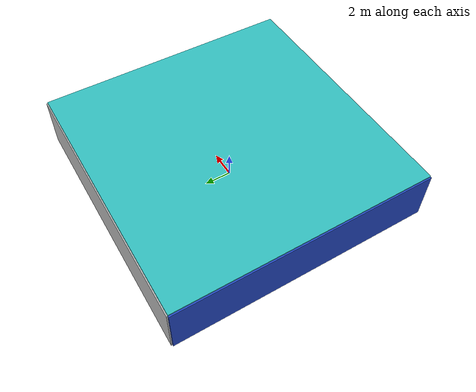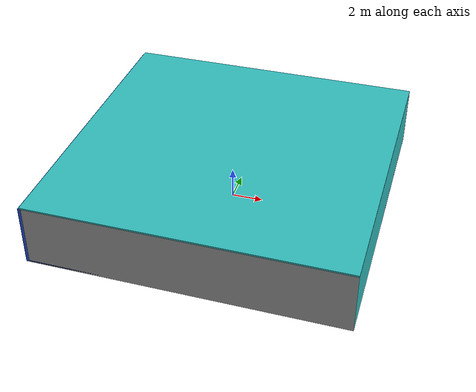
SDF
<sdf version="1.4">
 <world name="default">
  <physics type="ode">
   <max_step_size>0.001</max_step_size>
   <real_time_factor>1</real_time_factor>
   <real_time_update_rate>1000</real_time_update_rate>
   <gravity>0 0 -9.8</gravity>
  </physics>
  <scene><ambient>0.4 0.4 0.4 1</ambient><background>0.7 0.7 0.7 1</background><shadows>1</shadows></scene>
  <model name="Surrounding">
   <static>1</static>
   <link name="Ceiling">
    <collision name="Ceiling_Collision"><geometry><box><size>20 20 0.1</size></box></geometry></collision>
    <visual name="Ceiling_Visual">
     <geometry><box><size>20 20 0.1</size></box></geometry>
     <material>
      <script>
       <uri>file://media/materials/scripts/gazebo.material</uri>
       <name>Gazebo/TurquoiseGlowOutline</name>
      </script>
     </material>
    </visual>
    <pose>0 0 4.05 0 0 0</pose>
   </link>
   <link name="Wall_South">
    <collision name="Wall_South_Collision">
     <geometry><box><size>20 0 4</size></box></geometry>
     <pose>0 0 2 0 -0 0</pose>
    </collision>
    <visual name="Wall_South_Visual">
     <pose>0 0 2 0 -0 0</pose>
     <geometry><box><size>20 0 4</size></box></geometry>
     <material>
      <script><uri>file://media/materials/scripts/gazebo.material</uri><name>Gazebo/GreyGradientSky</name></script>
     </material>
    </visual>
    <velocity_decay><linear>0</linear><angular>0</angular></velocity_decay>
    <pose>0 -10 0 0 -0 0</pose>
   </link>
   <link name="Wall_East">
    <collision name="Wall_21_Collision">
     <geometry><box><size>20 0 4</size></box></geometry>
     <pose>0 0 2 0 -0 0</pose>
    </collision>
    <visual name="Wall_21_Visual">
     <pose>0 0 2 0 -0 0</pose>
     <geometry><box><size>20 0 4</size></box></geometry>
     <material>
      <script>
       <uri>file://media/materials/scripts/gazebo.material</uri>
       <name>Gazebo/TurquoiseGlowOutline</name>
      </script>
     </material>
    </visual>
    <velocity_decay><linear>0</linear><angular>0</angular></velocity_decay>
    <pose>10 0 0 0 -0 1.5708</pose>
   </link>
   <link name="Wall_North">
    <collision name="Wall_22_Collision">
     <geometry><box><size>20 0.2 4</size></box></geometry>
     <pose>0 0 2 0 -0 0</pose>
    </collision>
    <visual name="Wall_22_Visual">
     <pose>0 0 2 0 -0 0</pose>
     <geometry><box><size>20 0.2 4</size></box></geometry>
     <material>
      <script><uri>file://media/materials/scripts/gazebo.material</uri><name>Gazebo/JointAnchor</name></script>
     </material>
    </visual>
    <velocity_decay><linear>0</linear><angular>0</angular></velocity_decay>
    <pose>0 10 0 0 -0 0</pose>
   </link>
   <link name="Wall_West">
    <collision name="Wall_23_Collision">
     <geometry><box><size>20 0.2 4</size></box></geometry>
     <pose>0 0 2 0 -0 0</pose>
    </collision>
    <visual name="Wall_23_Visual">
     <pose>0 0 2 0 -0 0</pose>
     <geometry><box><size>20 0.2 4</size></box></geometry>
     <material>
      <script><uri>file://media/materials/scripts/gazebo.material</uri><name>Gazebo/Blue</name></script>
     </material>
    </visual>
    <velocity_decay><linear>0</linear><angular>0</angular></velocity_decay>
    <pose>-10 0 0 0 0 -1.5708</pose>
   </link>
   <link name="Ground_link">
    <collision name="collision">
     <pose>0 0 .05 0 -0 0</pose>
     <geometry><box><size>20 20 0.1</size></box></geometry>
    </collision>
    <visual name="visual">
     <pose>0 0 .05 0 -0 0</pose>
     <geometry><box><size>20 20 0.1</size></box></geometry>
     <material>
      <script><uri>file://media/materials/scripts/gazebo.material</uri><name>Gazebo/Blue</name></script>
     </material>
    </visual>
   </link>
   <static>1</static>
  </model>
  <spherical_coordinates>
   <surface_model>EARTH_WGS84</surface_model>
   <latitude_deg>0</latitude_deg>
   <longitude_deg>0</longitude_deg>
   <elevation>0</elevation>
   <heading_deg>0</heading_deg>
  </spherical_coordinates>
  <light name="lightball_0" type="diffuse">
   <diffuse>0.8 0.8 0.8 1</diffuse>
   <specular>0.2 0.2 0.2 1</specular>
   <attenuation>
    <range>100</range>
    <constant>0.7</constant>
    <linear>0.01</linear>
    <quadratic>0.001</quadratic>
   </attenuation>
   <direction>-0.5 0.1 -0.9</direction>
   <pose>-3.86227762536 -2.41019246587 3.71555062439 0 0 0</pose>
  </light>
  <light name="lightball_1" type="diffuse">
   <diffuse>0.8 0.8 0.8 1</diffuse>
   <specular>0.2 0.2 0.2 1</specular>
   <attenuation>
    <range>100</range>
    <constant>0.7</constant>
    <linear>0.01</linear>
    <quadratic>0.001</quadratic>
   </attenuation>
   <direction>-0.5 0.1 -0.9</direction>
   <pose>5.61935691695 -5.64362054377 1.68235835918 0 0 0</pose>
  </light>
  <light name="lightball_2" type="diffuse">
   <diffuse>0.8 0.8 0.8 1</diffuse>
   <specular>0.2 0.2 0.2 1</specular>
   <attenuation>
    <range>100</range>
    <constant>0.7</constant>
    <linear>0.01</linear>
    <quadratic>0.001</quadratic>
   </attenuation>
   <direction>-0.5 0.1 -0.9</direction>
   <pose>0.375384930974 -2.25901895546 1.63686047577 0 0 0</pose>
  </light>
  <light name="lightball_3" type="diffuse">
   <diffuse>0.8 0.8 0.8 1</diffuse>
   <specular>0.2 0.2 0.2 1</specular>
   <attenuation>
    <range>100</range>
    <constant>0.7</constant>
    <linear>0.01</linear>
    <quadratic>0.001</quadratic>
   </attenuation>
   <direction>-0.5 0.1 -0.9</direction>
   <pose>7.59535509343 9.12177182558 3.85417673149 0 0 0</pose>
  </light>
  <light name="lightball_4" type="diffuse">
   <diffuse>0.8 0.8 0.8 1</diffuse>
   <specular>0.2 0.2 0.2 1</specular>
   <attenuation>
    <range>100</range>
    <constant>0.7</constant>
    <linear>0.01</linear>
    <quadratic>0.001</quadratic>
   </attenuation>
   <direction>-0.5 0.1 -0.9</direction>
   <pose>-6.75650341755 1.10960803492 0.867866606159 0 0 0</pose>
  </light>
  <light name="lightball_5" type="diffuse">
   <diffuse>0.8 0.8 0.8 1</diffuse>
   <specular>0.2 0.2 0.2 1</specular>
   <attenuation>
    <range>100</range>
    <constant>0.7</constant>
    <linear>0.01</linear>
    <quadratic>0.001</quadratic>
   </attenuation>
   <direction>-0.5 0.1 -0.9</direction>
   <pose>-7.4995131681 -5.21967765663 1.01654193526 0 0 0</pose>
  </light>
  <light name="lightball_6" type="diffuse">
   <diffuse>0.8 0.8 0.8 1</diffuse>
   <specular>0.2 0.2 0.2 1</specular>
   <attenuation>
    <range>100</range>
    <constant>0.7</constant>
    <linear>0.01</linear>
    <quadratic>0.001</quadratic>
   </attenuation>
   <direction>-0.5 0.1 -0.9</direction>
   <pose>5.81967594573 -0.0641894491867 1.24571673397 0 0 0</pose>
  </light>
  <light name="lightball_7" type="diffuse">
   <diffuse>0.8 0.8 0.8 1</diffuse>
   <specular>0.2 0.2 0.2 1</specular>
   <attenuation>
    <range>100</range>
    <constant>0.7</constant>
    <linear>0.01</linear>
    <quadratic>0.001</quadratic>
   </attenuation>
   <direction>-0.5 0.1 -0.9</direction>
   <pose>-4.25423305065 0.562775720762 2.433494789 0 0 0</pose>
  </light>
  <light name="lightball_8" type="diffuse">
   <diffuse>0.8 0.8 0.8 1</diffuse>
   <specular>0.2 0.2 0.2 1</specular>
   <attenuation>
    <range>100</range>
    <constant>0.7</constant>
    <linear>0.01</linear>
    <quadratic>0.001</quadratic>
   </attenuation>
   <direction>-0.5 0.1 -0.9</direction>
   <pose>5.47277446777 6.08490988344 0.913874295808 0 0 0</pose>
  </light>
  <light name="lightball_9" type="diffuse">
   <diffuse>0.8 0.8 0.8 1</diffuse>
   <specular>0.2 0.2 0.2 1</specular>
   <attenuation>
    <range>100</range>
    <constant>0.7</constant>
    <linear>0.01</linear>
    <quadratic>0.001</quadratic>
   </attenuation>
   <direction>-0.5 0.1 -0.9</direction>
   <pose>-8.42083114305 4.22484928313 2.84362580633 0 0 0</pose>
  </light>
  <light name="lightball_10" type="diffuse">
   <diffuse>0.8 0.8 0.8 1</diffuse>
   <specular>0.2 0.2 0.2 1</specular>
   <attenuation>
    <range>100</range>
    <constant>0.7</constant>
    <linear>0.01</linear>
    <quadratic>0.001</quadratic>
   </attenuation>
   <direction>-0.5 0.1 -0.9</direction>
   <pose>0.682997296228 -3.26331253795 3.02733442901 0 0 0</pose>
  </light>
  <light name="lightball_11" type="diffuse">
   <diffuse>0.8 0.8 0.8 1</diffuse>
   <specular>0.2 0.2 0.2 1</specular>
   <attenuation>
    <range>100</range>
    <constant>0.7</constant>
    <linear>0.01</linear>
    <quadratic>0.001</quadratic>
   </attenuation>
   <direction>-0.5 0.1 -0.9</direction>
   <pose>-0.414385901895 9.46073497607 1.66823705384 0 0 0</pose>
  </light>
  <light name="lightball_12" type="diffuse">
   <diffuse>0.8 0.8 0.8 1</diffuse>
   <specular>0.2 0.2 0.2 1</specular>
   <attenuation>
    <range>100</range>
    <constant>0.7</constant>
    <linear>0.01</linear>
    <quadratic>0.001</quadratic>
   </attenuation>
   <direction>-0.5 0.1 -0.9</direction>
   <pose>-0.778881620349 5.59199572076 2.75350718564 0 0 0</pose>
  </light>
  <include>
   <uri>model://robocup_3Dsim_goal</uri>
   <pose>-4.29075227672 -0.674691783336 0 0 0 2.13484099572</pose>
  </include>
  <include>
   <uri>model://textured_shapes</uri>
   <pose>-3.955982781 1.71145998938 0 0 0 2.8359937576</pose>
  </include>
  <include><uri>model://cabinet</uri><pose>0.571395238782 4.96829986318 0 0 0 1.62418342955</pose></include>
  <include><uri>model://cabinet</uri><pose>4.35926071712 -7.2457801438 0 0 0 0.155115256434</pose></include>
 </world>
</sdf>

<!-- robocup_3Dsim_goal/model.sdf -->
<sdf version="1.5">
  <model name="robocup_3d_goal">
    <static>true</static>
    <link name="left_post">
      <pose>0 1.05 0.45 0 0 0</pose>
      <collision name="collision">
        <geometry>
          <cylinder>
            <radius>0.05</radius>
            <length>0.9</length>
          </cylinder>
        </geometry>
      </collision>
      <visual name="visual">
        <geometry>
          <cylinder>
            <radius>0.05</radius>
            <length>0.9</length>
          </cylinder>
        </geometry>
        <material>
          <script>
            <uri>file://media/materials/scripts/gazebo.material</uri>
            <name>Gazebo/ZincYellow</name>
          </script>
        </material>
      </visual>
    </link>
    <link name="left_support_horiz_lower">
      <pose>0.30 1.05 0.01 0 0 0</pose>
      <collision name="collision">
        <geometry>
          <box>
            <size>0.50 0.02 0.02</size>
          </box>
        </geometry>
      </collision>
      <visual name="visual">
        <geometry>
          <box>
            <size>0.50 0.02 0.02</size>
          </box>
        </geometry>
        <material>
          <script>
            <uri>file://media/materials/scripts/gazebo.material</uri>
            <name>Gazebo/White</name>
          </script>
        </material>
      </visual>
    </link>
    <link name="left_support_horiz_upper">
      <pose>0.30 1.05 0.79 0 0 0</pose>
      <collision name="collision">
        <geometry>
          <box>
            <size>0.50 0.02 0.02</size>
          </box>
        </geometry>
      </collision>
      <visual name="visual">
        <geometry>
          <box>
            <size>0.50 0.02 0.02</size>
          </box>
        </geometry>
        <material>
          <script>
            <uri>file://media/materials/scripts/gazebo.material</uri>
            <name>Gazebo/White</name>
          </script>
        </material>
      </visual>
    </link>
    <link name="left_support_vertical">
      <pose>0.56 1.05 0.4 0 1.5708 0</pose>
      <collision name="collision">
        <geometry>
          <box>
            <size>0.80 0.02 0.02</size>
          </box>
        </geometry>
      </collision>
      <visual name="visual">
        <geometry>
          <box>
            <size>0.80 0.02 0.02</size>
          </box>
        </geometry>
        <material>
          <script>
            <uri>file://media/materials/scripts/gazebo.material</uri>
            <name>Gazebo/White</name>
          </script>
        </material>
      </visual>
    </link>
    <link name="right_support_horiz_lower">
      <pose>0.30 -1.05 0.01 0 0 0</pose>
      <collision name="collision">
        <geometry>
          <box>
            <size>0.50 0.02 0.02</size>
          </box>
        </geometry>
      </collision>
      <visual name="visual">
        <geometry>
          <box>
            <size>0.50 0.02 0.02</size>
          </box>
        </geometry>
        <material>
          <script>
            <uri>file://media/materials/scripts/gazebo.material</uri>
            <name>Gazebo/White</name>
          </script>
        </material>
      </visual>
    </link>
    <link name="right_support_horiz_upper">
      <pose>0.30 -1.05 0.79 0 0 0</pose>
      <collision name="collision">
        <geometry>
          <box>
            <size>0.50 0.02 0.02</size>
          </box>
        </geometry>
      </collision>
      <visual name="visual">
        <geometry>
          <box>
            <size>0.50 0.02 0.02</size>
          </box>
        </geometry>
        <material>
          <script>
            <uri>file://media/materials/scripts/gazebo.material</uri>
            <name>Gazebo/White</name>
          </script>
        </material>
      </visual>
    </link>
    <link name="right_support_vertical">
      <pose>0.56 -1.05 0.4 0 1.5708 0</pose>
      <collision name="collision">
        <geometry>
          <box>
            <size>0.80 0.02 0.02</size>
          </box>
        </geometry>
      </collision>
      <visual name="visual">
        <geometry>
          <box>
            <size>0.80 0.02 0.02</size>
          </box>
        </geometry>
        <material>
          <script>
            <uri>file://media/materials/scripts/gazebo.material</uri>
            <name>Gazebo/White</name>
          </script>
        </material>
      </visual>
    </link>
    <link name="center_support_horiz_lower">
      <pose>0.56 0 0.01 0 1.5708 0</pose>
      <collision name="collision">
        <geometry>
          <box>
            <size>0.02 2.08 0.02</size>
          </box>
        </geometry>
      </collision>
      <visual name="visual">
        <geometry>
          <box>
            <size>0.02 2.08 0.02</size>
          </box>
        </geometry>
        <material>
          <script>
            <uri>file://media/materials/scripts/gazebo.material</uri>
            <name>Gazebo/White</name>
          </script>
        </material>
      </visual>
    </link>
    <link name="center_support_horiz_upper">
      <pose>0.56 0 0.79 0 1.5708 0</pose>
      <collision name="collision">
        <geometry>
          <box>
            <size>0.02 2.08 0.02</size>
          </box>
        </geometry>
      </collision>
      <visual name="visual">
        <geometry>
          <box>
            <size>0.02 2.08 0.02</size>
          </box>
        </geometry>
        <material>
          <script>
            <uri>file://media/materials/scripts/gazebo.material</uri>
            <name>Gazebo/White</name>
          </script>
        </material>
      </visual>
    </link>
    <link name="right_post">
      <pose>0 -1.05 0.45 0 0 0</pose>
      <collision name="collision">
        <geometry>
          <cylinder>
            <radius>0.05</radius>
            <length>0.9</length>
          </cylinder>
        </geometry>
      </collision>
      <visual name="visual">
        <geometry>
          <cylinder>
            <radius>0.05</radius>
            <length>0.9</length>
          </cylinder>
        </geometry>
        <material>
          <script>
            <uri>file://media/materials/scripts/gazebo.material</uri>
            <name>Gazebo/ZincYellow</name>
          </script>
        </material>
      </visual>
    </link>
    <link name="crossbar">
      <pose>0 0 0.85 1.57 1.57 0</pose>
      <collision name="collision">
        <geometry>
          <cylinder>
            <radius>0.05</radius>
            <length>2.0</length>
          </cylinder>
        </geometry>
      </collision>
      <visual name="visual">
        <geometry>
          <cylinder>
            <radius>0.05</radius>
            <length>2.0</length>
          </cylinder>
        </geometry>
        <material>
          <script>
            <uri>file://media/materials/scripts/gazebo.material</uri>
            <name>Gazebo/ZincYellow</name>
          </script>
        </material>
      </visual>
    </link>
    <link name="center_net">
      <pose>0.56 0 0.40 0 0 0</pose>
      <collision name="collision">
        <geometry>
          <box>
            <size>0.01 2.1 0.80</size>
          </box>
        </geometry>
      </collision>
      <visual name="visual">
        <geometry>
          <box>
            <size>0.01 2.1 0.80</size>
          </box>
        </geometry>
        <material>
          <script>
            <uri>model://../model_source/models/robocup09_spl_field/materials/scripts/</uri>
            <uri>model://../model_source/models/robocup09_spl_field/materials/textures/</uri>
            <name>RoboCup/Net</name>
          </script>
        </material>
      </visual>
    </link>
    <link name="left_net">
      <pose>0.30 1.05 0.40 0 0 0</pose>
      <collision name="collision">
        <geometry>
          <box>
            <size>0.50 0.01 0.76</size>
          </box>
        </geometry>
      </collision>
      <visual name="visual">
        <geometry>
          <box>
            <size>0.50 0.01 0.76</size>
          </box>
        </geometry>
        <material>
          <script>
            <uri>model://../model_source/models/robocup09_spl_field/materials/scripts/</uri>
            <uri>model://../model_source/models/robocup09_spl_field/materials/textures/</uri>
            <name>RoboCup/Net</name>
          </script>
        </material>
      </visual>
    </link>
    <link name="right_net">
      <pose>0.30 -1.05 0.40 0 0 0</pose>
      <collision name="collision">
        <geometry>
          <box>
            <size>0.50 0.01 0.76</size>
          </box>
        </geometry>
      </collision>
      <visual name="visual">
        <geometry>
          <box>
            <size>0.50 0.01 0.76</size>
          </box>
        </geometry>
        <material>
          <script>
            <uri>model://../model_source/models/robocup09_spl_field/materials/scripts/</uri>
            <uri>model://../model_source/models/robocup09_spl_field/materials/textures/</uri>
            <name>RoboCup/Net</name>
          </script>
        </material>
      </visual>
    </link>
  </model>
</sdf>

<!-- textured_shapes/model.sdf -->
<sdf version="1.6">
  <model name="textured_shapes">
    <pose>0 0 0.5 0 0 0</pose>
    <link name="box">
      <pose>0 -1.5 0 0 0 0</pose>
      <collision name="collision">
        <geometry>
          <box>
            <size>1 1 1</size>
          </box>
        </geometry>
      </collision>
      <visual name="visual">
        <geometry>
          <box>
            <size>1 1 1</size>
          </box>
        </geometry>
        <material>
          <script>
            <uri>model://../model_source/models/textured_shapes/materials/scripts</uri>
            <uri>model://../model_source/models/textured_shapes/materials/textures</uri>
            <name>TexturedShape/Squares</name>
          </script>
        </material>
      </visual>
    </link>
    <link name="sphere">
      <collision name="collision">
        <geometry>
          <sphere>
            <radius>0.5</radius>
          </sphere>
        </geometry>
      </collision>
      <visual name="visual">
        <geometry>
          <sphere>
            <radius>0.5</radius>
          </sphere>
        </geometry>
        <material>
          <script>
            <uri>model://../model_source/models/textured_shapes/materials/scripts</uri>
            <uri>model://../model_source/models/textured_shapes/materials/textures</uri>
            <name>TexturedShape/Squares</name>
          </script>
        </material>
      </visual>
    </link>
    <link name="cylinder">
      <pose>0 1.5 0 0 0 0</pose>
      <collision name="collision">
        <geometry>
          <cylinder>
            <radius>0.5</radius>
            <length>1</length>
          </cylinder>
        </geometry>
      </collision>
      <visual name="visual">
        <geometry>
          <cylinder>
            <radius>0.5</radius>
            <length>1</length>
          </cylinder>
        </geometry>
        <material>
          <script>
            <uri>model://../model_source/models/textured_shapes/materials/scripts</uri>
            <uri>model://../model_source/models/textured_shapes/materials/textures</uri>
            <name>TexturedShape/Squares</name>
          </script>
        </material>
      </visual>
    </link>
  </model>
</sdf>

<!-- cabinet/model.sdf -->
<sdf version="1.5">
  <model name="cabinet">
    <static>true</static>
    <link name="cabinet_bottom_plate">
      <inertial>
        <pose>0 0 -1 0 0 0</pose>
        <inertia>
          <ixx>2.050000</ixx>
          <ixy>0</ixy>
          <ixz>0</ixz>
          <iyy>2.050000</iyy>
          <iyz>0</iyz>
          <izz>2.050000</izz>
        </inertia>
        <mass>25.000000</mass>
      </inertial>
      <collision name="cabinet_bottom_plate_geom">
        <pose>0 0 0.010000 0 0 0</pose>
        <geometry>
          <box>
            <size>0.450000 0.450000 0.020000</size>
          </box>
        </geometry>
      </collision>
      <visual name="cabinet_bottom_plate_geom_visual">
        <pose>0 0 0.010000 0 0 0</pose>
        <geometry>
          <box>
            <size>0.450000 0.450000 0.020000</size>
          </box>
        </geometry>
        <material>
          <script>
            <uri>model://media/materials/scripts/gazebo.material</uri>
            <name>Gazebo/Wood</name>
          </script>
        </material>
      </visual>
      <collision name="cabinet_bottom_plate_geom_cabinet_back_plate">
        <pose>0.235000 0 0.510000 0 0 0</pose>
        <geometry>
          <box>
            <size>0.020000 0.450000 1.020000</size>
          </box>
        </geometry>
      </collision>
      <visual name="cabinet_bottom_plate_geom_cabinet_back_plate_visual">
        <pose>0.235000 0 0.510000 0 0 0</pose>
        <geometry>
          <box>
            <size>0.020000 0.450000 1.020000</size>
          </box>
        </geometry>
        <material>
          <script>
            <uri>model://media/materials/scripts/gazebo.material</uri>
            <name>Gazebo/Wood</name>
          </script>
        </material>
      </visual>
      <collision name="cabinet_bottom_plate_geom_cabinet_left_plate">
        <pose>0 0.235000 0.510000 0 0 0</pose>
        <geometry>
          <box>
            <size>0.450000 0.020000 1.020000</size>
          </box>
        </geometry>
      </collision>
      <visual name="cabinet_bottom_plate_geom_cabinet_left_plate_visual">
        <pose>0 0.235000 0.510000 0 0 0</pose>
        <geometry>
          <box>
            <size>0.450000 0.020000 1.020000</size>
          </box>
        </geometry>
        <material>
          <script>
            <uri>model://media/materials/scripts/gazebo.material</uri>
            <name>Gazebo/Wood</name>
          </script>
        </material>
      </visual>
      <collision name="cabinet_bottom_plate_geom_cabinet_middle_plate">
        <pose>0 0 0.510000 0 0 0</pose>
        <geometry>
          <box>
            <size>0.450000 0.450000 0.020000</size>
          </box>
        </geometry>
      </collision>
      <visual name="cabinet_bottom_plate_geom_cabinet_middle_plate_visual">
        <pose>0 0 0.510000 0 0 0</pose>
        <geometry>
          <box>
            <size>0.450000 0.450000 0.020000</size>
          </box>
        </geometry>
        <material>
          <script>
            <uri>model://media/materials/scripts/gazebo.material</uri>
            <name>Gazebo/Wood</name>
          </script>
        </material>
      </visual>
      <collision name="cabinet_bottom_plate_geom_cabinet_right_plate">
        <pose>0 -0.235000 0.510000 0 0 0</pose>
        <geometry>
          <box>
            <size>0.450000 0.020000 1.020000</size>
          </box>
        </geometry>
      </collision>
      <visual name="cabinet_bottom_plate_geom_cabinet_right_plate_visual">
        <pose>0 -0.235000 0.510000 0 0 0</pose>
        <geometry>
          <box>
            <size>0.450000 0.020000 1.020000</size>
          </box>
        </geometry>
        <material>
          <script>
            <uri>model://media/materials/scripts/gazebo.material</uri>
            <name>Gazebo/Wood</name>
          </script>
        </material>
      </visual>
      <collision name="cabinet_bottom_plate_geom_cabinet_top_plate">
        <pose>0 0 1.010000 0 0 0</pose>
        <geometry>
          <box>
            <size>0.450000 0.450000 0.020000</size>
          </box>
        </geometry>
      </collision>
      <visual name="cabinet_bottom_plate_geom_cabinet_top_plate_visual">
        <pose>0 0 1.010000 0 0 0</pose>
        <geometry>
          <box>
            <size>0.450000 0.450000 0.020000</size>
          </box>
        </geometry>
        <material>
          <script>
            <uri>model://media/materials/scripts/gazebo.material</uri>
            <name>Gazebo/Wood</name>
          </script>
        </material>
      </visual>
    </link>
  </model>
</sdf>
